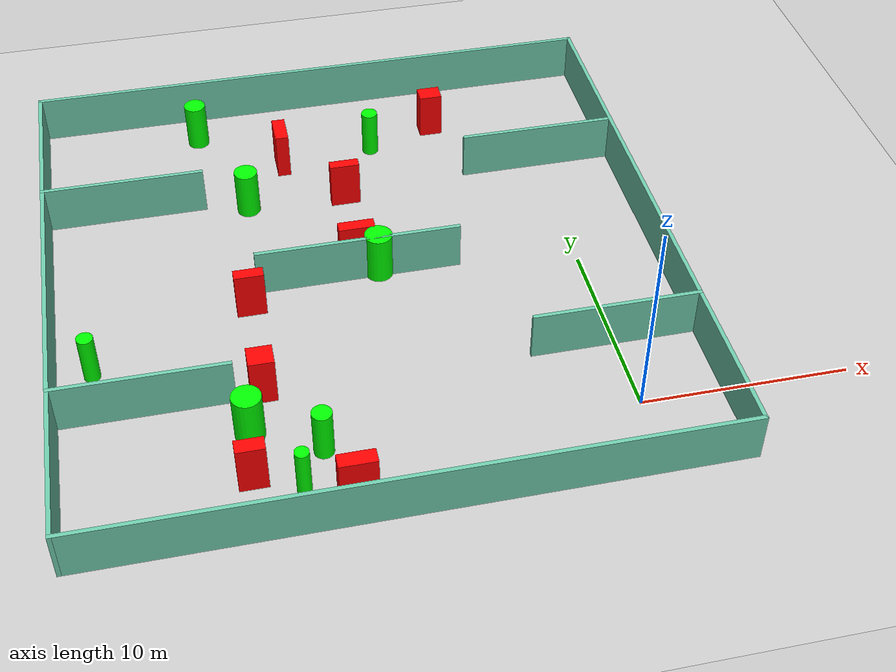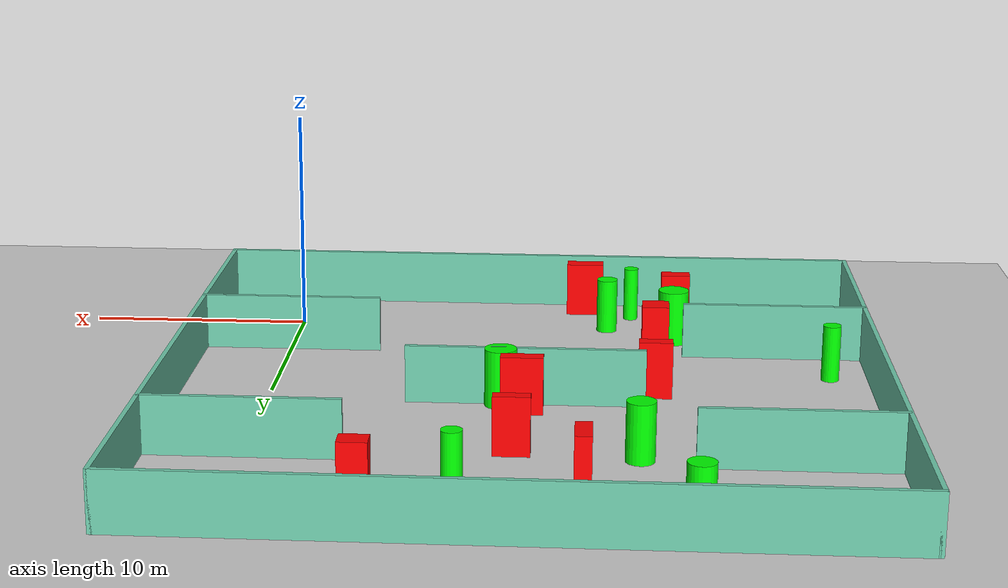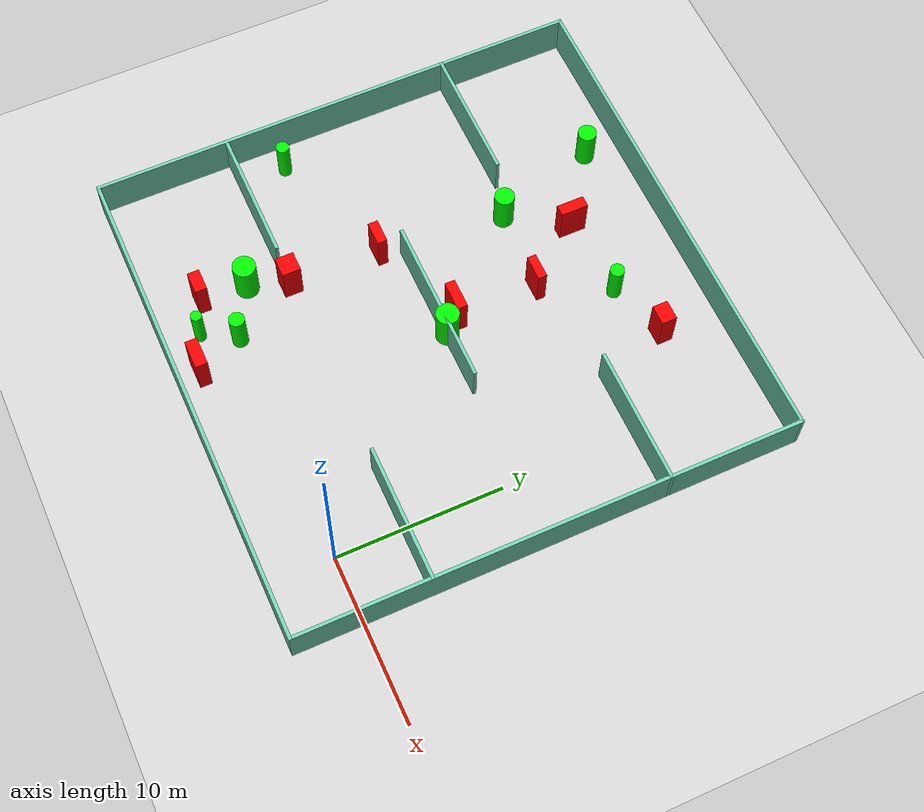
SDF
<sdf version="1.7">
 <world name="default">
  <light name="sun" type="directional">
   <pose>0 0 10 0 -0 0</pose>
   <diffuse>0.8 0.8 0.8 1</diffuse>
   <specular>0.2 0.2 0.2 1</specular>
   <attenuation>
    <range>1000</range>
    <constant>0.9</constant>
    <linear>0.01</linear>
    <quadratic>0.001</quadratic>
   </attenuation>
   <direction>-0.5 0.1 -0.9</direction>
   <spot><inner_angle>0</inner_angle><outer_angle>0</outer_angle><falloff>0</falloff></spot>
  </light>
  <model name="ground_plane">
   <static>1</static>
   <link name="link">
    <collision name="collision">
     <geometry><plane><normal>0 0 1</normal><size>100 100</size></plane></geometry>
     <surface>
      <contact><collide_bitmask>65535</collide_bitmask></contact>
      <friction><ode><mu>100</mu><mu2>50</mu2></ode></friction>
     </surface>
    </collision>
    <visual name="visual">
     <cast_shadows>0</cast_shadows>
     <geometry><plane><normal>0 0 1</normal><size>100 100</size></plane></geometry>
     <material>
      <script><uri>file://media/materials/scripts/gazebo.material</uri><name>Gazebo/Grey</name></script>
     </material>
    </visual>
   </link>
  </model>
  <gravity>0 0 -9.8</gravity>
  <magnetic_field>6e-06 2.3e-05 -4.2e-05</magnetic_field>
  <atmosphere type="adiabatic"/>
  <physics type="ode">
   <max_step_size>0.001</max_step_size>
   <real_time_factor>1</real_time_factor>
   <real_time_update_rate>1000</real_time_update_rate>
  </physics>
  <scene><ambient>0.4 0.4 0.4 1</ambient><background>0.7 0.7 0.7 1</background><shadows>1</shadows></scene>
  <spherical_coordinates>
   <surface_model>EARTH_WGS84</surface_model>
   <latitude_deg>0</latitude_deg>
   <longitude_deg>0</longitude_deg>
   <elevation>0</elevation>
   <heading_deg>0</heading_deg>
  </spherical_coordinates>
  <model name="my_base_walls">
   <link name="Wall_10">
    <collision name="Wall_10_Collision">
     <geometry><box><size>8.2 0.2 2.5</size></box></geometry>
     <pose>0 0 1.25 0 -0 0</pose>
    </collision>
    <visual name="Wall_10_Visual">
     <pose>0 0 1.25 0 -0 0</pose>
     <geometry><box><size>8.2 0.2 2.5</size></box></geometry>
     <material>
      <script><uri>file://media/materials/scripts/gazebo.material</uri><name>Gazebo/Grey</name></script>
      <ambient>0.435294 0.796078 0.67451 1</ambient>
     </material>
     <meta><layer>0</layer></meta>
    </visual>
    <pose>-11 -7 0 0 -0 0</pose>
   </link>
   <link name="Wall_12">
    <collision name="Wall_12_Collision">
     <geometry><box><size>8.2 0.2 2.5</size></box></geometry>
     <pose>0 0 1.25 0 -0 0</pose>
    </collision>
    <visual name="Wall_12_Visual">
     <pose>0 0 1.25 0 -0 0</pose>
     <geometry><box><size>8.2 0.2 2.5</size></box></geometry>
     <material>
      <script><uri>file://media/materials/scripts/gazebo.material</uri><name>Gazebo/Grey</name></script>
      <ambient>0.435294 0.796078 0.67451 1</ambient>
     </material>
     <meta><layer>0</layer></meta>
    </visual>
    <pose>-11 7 0 0 -0 0</pose>
   </link>
   <link name="Wall_14">
    <collision name="Wall_14_Collision">
     <geometry><box><size>8.2 0.2 2.5</size></box></geometry>
     <pose>0 0 1.25 0 -0 0</pose>
    </collision>
    <visual name="Wall_14_Visual">
     <pose>0 0 1.25 0 -0 0</pose>
     <geometry><box><size>8.2 0.2 2.5</size></box></geometry>
     <material>
      <script><uri>file://media/materials/scripts/gazebo.material</uri><name>Gazebo/Grey</name></script>
      <ambient>0.435294 0.796078 0.67451 1</ambient>
     </material>
     <meta><layer>0</layer></meta>
    </visual>
    <pose>11 7 0 0 -0 3.14159</pose>
   </link>
   <link name="Wall_16">
    <collision name="Wall_16_Collision">
     <geometry><box><size>10.2 0.2 2.5</size></box></geometry>
     <pose>0 0 1.25 0 -0 0</pose>
    </collision>
    <visual name="Wall_16_Visual">
     <pose>0 0 1.25 0 -0 0</pose>
     <geometry><box><size>10.2 0.2 2.5</size></box></geometry>
     <material>
      <script><uri>file://media/materials/scripts/gazebo.material</uri><name>Gazebo/Grey</name></script>
      <ambient>0.435294 0.796078 0.67451 1</ambient>
     </material>
     <meta><layer>0</layer></meta>
    </visual>
    <pose>0 0 0 0 -0 3.14159</pose>
   </link>
   <link name="Wall_2">
    <collision name="Wall_2_Collision">
     <geometry><box><size>30.2 0.2 2.5</size></box></geometry>
     <pose>0 0 1.25 0 -0 0</pose>
    </collision>
    <visual name="Wall_2_Visual">
     <pose>0 0 1.25 0 -0 0</pose>
     <geometry><box><size>30.2 0.2 2.5</size></box></geometry>
     <material>
      <script><uri>file://media/materials/scripts/gazebo.material</uri><name>Gazebo/Grey</name></script>
      <ambient>0.435294 0.796078 0.67451 1</ambient>
     </material>
     <meta><layer>0</layer></meta>
    </visual>
    <pose>0 -15 0 0 -0 3.14159</pose>
   </link>
   <link name="Wall_3">
    <collision name="Wall_3_Collision">
     <geometry><box><size>30.2 0.2 2.5</size></box></geometry>
     <pose>0 0 1.25 0 -0 0</pose>
    </collision>
    <visual name="Wall_3_Visual">
     <pose>0 0 1.25 0 -0 0</pose>
     <geometry><box><size>30.2 0.2 2.5</size></box></geometry>
     <material>
      <script><uri>file://media/materials/scripts/gazebo.material</uri><name>Gazebo/Grey</name></script>
      <ambient>0.435294 0.796078 0.67451 1</ambient>
     </material>
     <meta><layer>0</layer></meta>
    </visual>
    <pose>-15 0 0 0 -0 1.5708</pose>
   </link>
   <link name="Wall_4">
    <collision name="Wall_4_Collision">
     <geometry><box><size>30.2 0.2 2.5</size></box></geometry>
     <pose>0 0 1.25 0 -0 0</pose>
    </collision>
    <visual name="Wall_4_Visual">
     <pose>0 0 1.25 0 -0 0</pose>
     <geometry><box><size>30.2 0.2 2.5</size></box></geometry>
     <material>
      <script><uri>file://media/materials/scripts/gazebo.material</uri><name>Gazebo/Grey</name></script>
      <ambient>0.435294 0.796078 0.67451 1</ambient>
     </material>
     <meta><layer>0</layer></meta>
    </visual>
    <pose>0 15 0 0 -0 0</pose>
   </link>
   <link name="Wall_6">
    <collision name="Wall_6_Collision">
     <geometry><box><size>30.2 0.2 2.5</size></box></geometry>
     <pose>0 0 1.25 0 -0 0</pose>
    </collision>
    <visual name="Wall_6_Visual">
     <pose>0 0 1.25 0 -0 0</pose>
     <geometry><box><size>30.2 0.2 2.5</size></box></geometry>
     <material>
      <script><uri>file://media/materials/scripts/gazebo.material</uri><name>Gazebo/Grey</name></script>
      <ambient>0.435294 0.796078 0.67451 1</ambient>
     </material>
     <meta><layer>0</layer></meta>
    </visual>
    <pose>15 0 0 0 -0 1.5708</pose>
   </link>
   <link name="Wall_8">
    <collision name="Wall_8_Collision">
     <geometry><box><size>8.2 0.2 2.5</size></box></geometry>
     <pose>0 0 1.25 0 -0 0</pose>
    </collision>
    <visual name="Wall_8_Visual">
     <pose>0 0 1.25 0 -0 0</pose>
     <geometry><box><size>8.2 0.2 2.5</size></box></geometry>
     <material>
      <script><uri>file://media/materials/scripts/gazebo.material</uri><name>Gazebo/Grey</name></script>
      <ambient>0.435294 0.796078 0.67451 1</ambient>
     </material>
     <meta><layer>0</layer></meta>
    </visual>
    <pose>11 -7 0 0 -0 3.14159</pose>
   </link>
   <static>1</static>
   <pose>-11 11 0 0 -0 0</pose>
  </model>
  <model name="cylinder1">
   <static>1</static>
   <link name="link">
    <inertial>
     <mass>1</mass>
     <inertia><ixx>0.5</ixx><ixy>0</ixy><ixz>0</ixz><iyy>0.5</iyy><iyz>0</iyz><izz>1</izz></inertia>
    </inertial>
    <collision name="collision">
     <geometry><cylinder><radius>0.46923267302812355</radius><length>2.5</length></cylinder></geometry>
    </collision>
    <visual name="visual">
     <geometry><cylinder><radius>0.46923267302812355</radius><length>2.5</length></cylinder></geometry>
     <material>
      <ambient>0 1 0 1</ambient>
      <diffuse>0 1 0 1</diffuse>
      <specular>0.1 0.1 0.1 1</specular>
      <emissive>0 0 0 0</emissive>
     </material>
    </visual>
   </link>
   <pose>-14.485238348594159 0.20833387651321988 1.25 0 0 0</pose>
  </model>
  <model name="cylinder2">
   <static>1</static>
   <link name="link">
    <inertial>
     <mass>1</mass>
     <inertia><ixx>0.5</ixx><ixy>0</ixy><ixz>0</ixz><iyy>0.5</iyy><iyz>0</iyz><izz>1</izz></inertia>
    </inertial>
    <collision name="collision">
     <geometry><cylinder><radius>0.33298385124676866</radius><length>2.5</length></cylinder></geometry>
    </collision>
    <visual name="visual">
     <geometry><cylinder><radius>0.33298385124676866</radius><length>2.5</length></cylinder></geometry>
     <material>
      <ambient>0 1 0 1</ambient>
      <diffuse>0 1 0 1</diffuse>
      <specular>0.1 0.1 0.1 1</specular>
      <emissive>0 0 0 0</emissive>
     </material>
    </visual>
   </link>
   <pose>-15.63564819462508 -1.7877961857874505 1.25 0 0 0</pose>
  </model>
  <model name="cylinder3">
   <static>1</static>
   <link name="link">
    <inertial>
     <mass>1</mass>
     <inertia><ixx>0.5</ixx><ixy>0</ixy><ixz>0</ixz><iyy>0.5</iyy><iyz>0</iyz><izz>1</izz></inertia>
    </inertial>
    <collision name="collision">
     <geometry><cylinder><radius>0.5965046094864569</radius><length>2.5</length></cylinder></geometry>
    </collision>
    <visual name="visual">
     <geometry><cylinder><radius>0.5965046094864569</radius><length>2.5</length></cylinder></geometry>
     <material>
      <ambient>0 1 0 1</ambient>
      <diffuse>0 1 0 1</diffuse>
      <specular>0.1 0.1 0.1 1</specular>
      <emissive>0 0 0 0</emissive>
     </material>
    </visual>
   </link>
   <pose>-15.753005582031877 17.42352699551471 1.25 0 0 0</pose>
  </model>
  <model name="cylinder4">
   <static>1</static>
   <link name="link">
    <inertial>
     <mass>1</mass>
     <inertia><ixx>0.5</ixx><ixy>0</ixy><ixz>0</ixz><iyy>0.5</iyy><iyz>0</iyz><izz>1</izz></inertia>
    </inertial>
    <collision name="collision">
     <geometry><cylinder><radius>0.3922961333607802</radius><length>2.5</length></cylinder></geometry>
    </collision>
    <visual name="visual">
     <geometry><cylinder><radius>0.3922961333607802</radius><length>2.5</length></cylinder></geometry>
     <material>
      <ambient>0 1 0 1</ambient>
      <diffuse>0 1 0 1</diffuse>
      <specular>0.1 0.1 0.1 1</specular>
      <emissive>0 0 0 0</emissive>
     </material>
    </visual>
   </link>
   <pose>-24.256604515813198 6.887921531598243 1.25 0 0 0</pose>
  </model>
  <model name="cylinder5">
   <static>1</static>
   <link name="link">
    <inertial>
     <mass>1</mass>
     <inertia><ixx>0.5</ixx><ixy>0</ixy><ixz>0</ixz><iyy>0.5</iyy><iyz>0</iyz><izz>1</izz></inertia>
    </inertial>
    <collision name="collision">
     <geometry><cylinder><radius>0.5603733841393901</radius><length>2.5</length></cylinder></geometry>
    </collision>
    <visual name="visual">
     <geometry><cylinder><radius>0.5603733841393901</radius><length>2.5</length></cylinder></geometry>
     <material>
      <ambient>0 1 0 1</ambient>
      <diffuse>0 1 0 1</diffuse>
      <specular>0.1 0.1 0.1 1</specular>
      <emissive>0 0 0 0</emissive>
     </material>
    </visual>
   </link>
   <pose>-17.78910186038896 23.82729125929326 1.25 0 0 0</pose>
  </model>
  <model name="cylinder6">
   <static>1</static>
   <link name="link">
    <inertial>
     <mass>1</mass>
     <inertia><ixx>0.5</ixx><ixy>0</ixy><ixz>0</ixz><iyy>0.5</iyy><iyz>0</iyz><izz>1</izz></inertia>
    </inertial>
    <collision name="collision">
     <geometry><cylinder><radius>0.692307246037858</radius><length>2.5</length></cylinder></geometry>
    </collision>
    <visual name="visual">
     <geometry><cylinder><radius>0.692307246037858</radius><length>2.5</length></cylinder></geometry>
     <material>
      <ambient>0 1 0 1</ambient>
      <diffuse>0 1 0 1</diffuse>
      <specular>0.1 0.1 0.1 1</specular>
      <emissive>0 0 0 0</emissive>
     </material>
    </visual>
   </link>
   <pose>-17.5408731378476 1.8273235350997297 1.25 0 0 0</pose>
  </model>
  <model name="cylinder7">
   <static>1</static>
   <link name="link">
    <inertial>
     <mass>1</mass>
     <inertia><ixx>0.5</ixx><ixy>0</ixy><ixz>0</ixz><iyy>0.5</iyy><iyz>0</iyz><izz>1</izz></inertia>
    </inertial>
    <collision name="collision">
     <geometry><cylinder><radius>0.6897886953062982</radius><length>2.5</length></cylinder></geometry>
    </collision>
    <visual name="visual">
     <geometry><cylinder><radius>0.6897886953062982</radius><length>2.5</length></cylinder></geometry>
     <material>
      <ambient>0 1 0 1</ambient>
      <diffuse>0 1 0 1</diffuse>
      <specular>0.1 0.1 0.1 1</specular>
      <emissive>0 0 0 0</emissive>
     </material>
    </visual>
   </link>
   <pose>-9.970948228641035 11.161550824283452 1.25 0 0 0</pose>
  </model>
  <model name="cylinder8">
   <static>1</static>
   <link name="link">
    <inertial>
     <mass>1</mass>
     <inertia><ixx>0.5</ixx><ixy>0</ixy><ixz>0</ixz><iyy>0.5</iyy><iyz>0</iyz><izz>1</izz></inertia>
    </inertial>
    <collision name="collision">
     <geometry><cylinder><radius>0.42620985636147535</radius><length>2.5</length></cylinder></geometry>
    </collision>
    <visual name="visual">
     <geometry><cylinder><radius>0.42620985636147535</radius><length>2.5</length></cylinder></geometry>
     <material>
      <ambient>0 1 0 1</ambient>
      <diffuse>0 1 0 1</diffuse>
      <specular>0.1 0.1 0.1 1</specular>
      <emissive>0 0 0 0</emissive>
     </material>
    </visual>
   </link>
   <pose>-8.605675622189857 21.157134475449205 1.25 0 0 0</pose>
  </model>
  <model name="box1">
   <static>1</static>
   <link name="link">
    <inertial>
     <mass>1</mass>
     <inertia><ixx>0.083</ixx><ixy>0</ixy><ixz>0</ixz><iyy>0.083</iyy><iyz>0</iyz><izz>0.083</izz></inertia>
    </inertial>
    <collision name="collision">
     <geometry><box><size>1.5147295056081693 0.5339080096876141 2.5</size></box></geometry>
    </collision>
    <visual name="visual">
     <geometry><box><size>1.5147295056081693 0.5339080096876141 2.5</size></box></geometry>
     <material>
      <ambient>1 0 0 1</ambient>
      <diffuse>1 0 0 1</diffuse>
      <specular>0.1 0.1 0.1 1</specular>
      <emissive>0 0 0 0</emissive>
     </material>
    </visual>
    <sensor name="my_contact" type="contact">
     <contact><collision>box_collision</collision><topic>__default_topic__</topic></contact>
    </sensor>
   </link>
   <pose>-10.677692620546052 17.08157877045458 1.25 0 0 0</pose>
  </model>
  <model name="box2">
   <static>1</static>
   <link name="link">
    <inertial>
     <mass>1</mass>
     <inertia><ixx>0.083</ixx><ixy>0</ixy><ixz>0</ixz><iyy>0.083</iyy><iyz>0</iyz><izz>0.083</izz></inertia>
    </inertial>
    <collision name="collision">
     <geometry><box><size>1.1896853941720613 0.9222712617578758 2.5</size></box></geometry>
    </collision>
    <visual name="visual">
     <geometry><box><size>1.1896853941720613 0.9222712617578758 2.5</size></box></geometry>
     <material>
      <ambient>1 0 0 1</ambient>
      <diffuse>1 0 0 1</diffuse>
      <specular>0.1 0.1 0.1 1</specular>
      <emissive>0 0 0 0</emissive>
     </material>
    </visual>
    <sensor name="my_contact" type="contact">
     <contact><collision>box_collision</collision><topic>__default_topic__</topic></contact>
    </sensor>
   </link>
   <pose>-5.04121227414109 22.328482032523727 1.25 0 0 0</pose>
  </model>
  <model name="box3">
   <static>1</static>
   <link name="link">
    <inertial>
     <mass>1</mass>
     <inertia><ixx>0.083</ixx><ixy>0</ixy><ixz>0</ixz><iyy>0.083</iyy><iyz>0</iyz><izz>0.083</izz></inertia>
    </inertial>
    <collision name="collision">
     <geometry><box><size>1.444738189643925 0.5954250831035627 2.5</size></box></geometry>
    </collision>
    <visual name="visual">
     <geometry><box><size>1.444738189643925 0.5954250831035627 2.5</size></box></geometry>
     <material>
      <ambient>1 0 0 1</ambient>
      <diffuse>1 0 0 1</diffuse>
      <specular>0.1 0.1 0.1 1</specular>
      <emissive>0 0 0 0</emissive>
     </material>
    </visual>
    <sensor name="my_contact" type="contact">
     <contact><collision>box_collision</collision><topic>__default_topic__</topic></contact>
    </sensor>
   </link>
   <pose>-16.523692415742033 9.695307341313985 1.25 0 0 0</pose>
  </model>
  <model name="box4">
   <static>1</static>
   <link name="link">
    <inertial>
     <mass>1</mass>
     <inertia><ixx>0.083</ixx><ixy>0</ixy><ixz>0</ixz><iyy>0.083</iyy><iyz>0</iyz><izz>0.083</izz></inertia>
    </inertial>
    <collision name="collision">
     <geometry><box><size>1.2036938646711262 1.1154139794344415 2.5</size></box></geometry>
    </collision>
    <visual name="visual">
     <geometry><box><size>1.2036938646711262 1.1154139794344415 2.5</size></box></geometry>
     <material>
      <ambient>1 0 0 1</ambient>
      <diffuse>1 0 0 1</diffuse>
      <specular>0.1 0.1 0.1 1</specular>
      <emissive>0 0 0 0</emissive>
     </material>
    </visual>
    <sensor name="my_contact" type="contact">
     <contact><collision>box_collision</collision><topic>__default_topic__</topic></contact>
    </sensor>
   </link>
   <pose>-16.65055735133827 4.17423353768509 1.25 0 0 0</pose>
  </model>
  <model name="box5">
   <static>1</static>
   <link name="link">
    <inertial>
     <mass>1</mass>
     <inertia><ixx>0.083</ixx><ixy>0</ixy><ixz>0</ixz><iyy>0.083</iyy><iyz>0</iyz><izz>0.083</izz></inertia>
    </inertial>
    <collision name="collision">
     <geometry><box><size>0.6810818111275255 1.657529430986516 2.5</size></box></geometry>
    </collision>
    <visual name="visual">
     <geometry><box><size>0.6810818111275255 1.657529430986516 2.5</size></box></geometry>
     <material>
      <ambient>1 0 0 1</ambient>
      <diffuse>1 0 0 1</diffuse>
      <specular>0.1 0.1 0.1 1</specular>
      <emissive>0 0 0 0</emissive>
     </material>
    </visual>
    <sensor name="my_contact" type="contact">
     <contact><collision>box_collision</collision><topic>__default_topic__</topic></contact>
    </sensor>
   </link>
   <pose>-13.528320640241661 20.7365101754834 1.25 0 0 0</pose>
  </model>
  <model name="box6">
   <static>1</static>
   <link name="link">
    <inertial>
     <mass>1</mass>
     <inertia><ixx>0.083</ixx><ixy>0</ixy><ixz>0</ixz><iyy>0.083</iyy><iyz>0</iyz><izz>0.083</izz></inertia>
    </inertial>
    <collision name="collision">
     <geometry><box><size>1.328430892141645 0.713743100621226 2.5</size></box></geometry>
    </collision>
    <visual name="visual">
     <geometry><box><size>1.328430892141645 0.713743100621226 2.5</size></box></geometry>
     <material>
      <ambient>1 0 0 1</ambient>
      <diffuse>1 0 0 1</diffuse>
      <specular>0.1 0.1 0.1 1</specular>
      <emissive>0 0 0 0</emissive>
     </material>
    </visual>
    <sensor name="my_contact" type="contact">
     <contact><collision>box_collision</collision><topic>__default_topic__</topic></contact>
    </sensor>
   </link>
   <pose>-17.72470723723531 -0.9432372237024609 1.25 0 0 0</pose>
  </model>
  <model name="box7">
   <static>1</static>
   <link name="link">
    <inertial>
     <mass>1</mass>
     <inertia><ixx>0.083</ixx><ixy>0</ixy><ixz>0</ixz><iyy>0.083</iyy><iyz>0</iyz><izz>0.083</izz></inertia>
    </inertial>
    <collision name="collision">
     <geometry><box><size>1.804460384037451 0.6137167213471213 2.5</size></box></geometry>
    </collision>
    <visual name="visual">
     <geometry><box><size>1.804460384037451 0.6137167213471213 2.5</size></box></geometry>
     <material>
      <ambient>1 0 0 1</ambient>
      <diffuse>1 0 0 1</diffuse>
      <specular>0.1 0.1 0.1 1</specular>
      <emissive>0 0 0 0</emissive>
     </material>
    </visual>
    <sensor name="my_contact" type="contact">
     <contact><collision>box_collision</collision><topic>__default_topic__</topic></contact>
    </sensor>
   </link>
   <pose>-10.900153028922555 12.115986252366183 1.25 0 0 0</pose>
  </model>
  <model name="box8">
   <static>1</static>
   <link name="link">
    <inertial>
     <mass>1</mass>
     <inertia><ixx>0.083</ixx><ixy>0</ixy><ixz>0</ixz><iyy>0.083</iyy><iyz>0</iyz><izz>0.083</izz></inertia>
    </inertial>
    <collision name="collision">
     <geometry><box><size>1.7312029447824466 0.7272331008731995 2.5</size></box></geometry>
    </collision>
    <visual name="visual">
     <geometry><box><size>1.7312029447824466 0.7272331008731995 2.5</size></box></geometry>
     <material>
      <ambient>1 0 0 1</ambient>
      <diffuse>1 0 0 1</diffuse>
      <specular>0.1 0.1 0.1 1</specular>
      <emissive>0 0 0 0</emissive>
     </material>
    </visual>
    <sensor name="my_contact" type="contact">
     <contact><collision>box_collision</collision><topic>__default_topic__</topic></contact>
    </sensor>
   </link>
   <pose>-13.432419403150297 -2.5944101110640925 1.25 0 0 0</pose>
  </model>
 </world>
</sdf>
